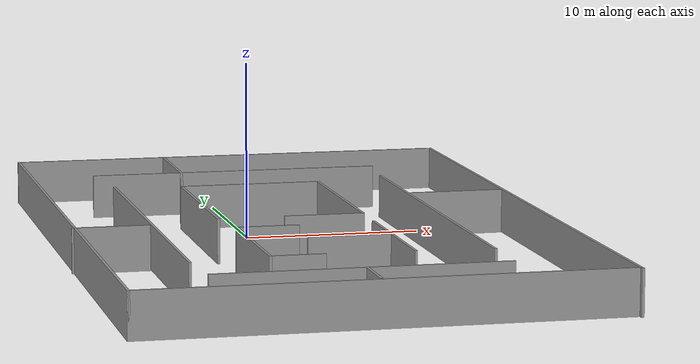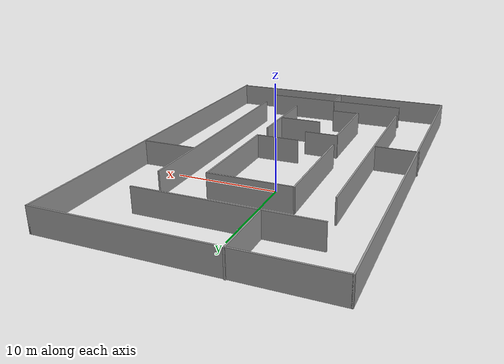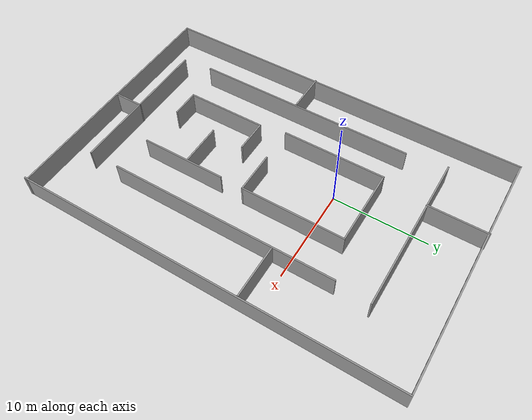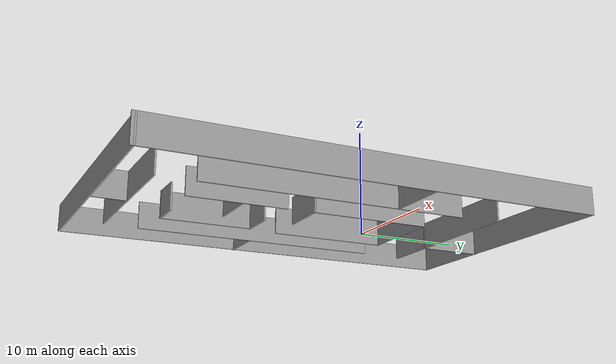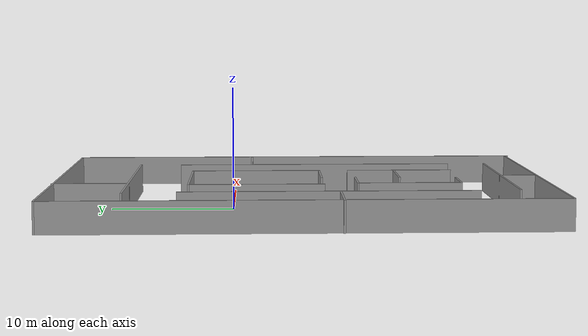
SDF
<?xml version='1.0'?>
<sdf version='1.7'>
  <model name='house02'>
    <pose>1.76621 -5.58674 0 0 -0 0</pose>
    <link name='Wall_0'>
      <collision name='Wall_0_Collision'>
        <geometry>
          <box>
            <size>40 0.15 2.5</size>
          </box>
        </geometry>
        <pose>0 0 1.25 0 -0 0</pose>
      </collision>
      <visual name='Wall_0_Visual'>
        <pose>0 0 1.25 0 -0 0</pose>
        <geometry>
          <box>
            <size>40 0.15 2.5</size>
          </box>
        </geometry>
        <material>
          <script>
            <uri>file://media/materials/scripts/gazebo.material</uri>
            <name>Gazebo/Grey</name>
          </script>
          <ambient>1 1 1 1</ambient>
        </material>
        <meta>
          <layer>0</layer>
        </meta>
      </visual>
      <pose>-12.8717 0.078301 0 0 -0 -1.5708</pose>
    </link>
    <link name='Wall_10'>
      <collision name='Wall_10_Collision'>
        <geometry>
          <box>
            <size>17 0.15 2.5</size>
          </box>
        </geometry>
        <pose>0 0 1.25 0 -0 0</pose>
      </collision>
      <visual name='Wall_10_Visual'>
        <pose>0 0 1.25 0 -0 0</pose>
        <geometry>
          <box>
            <size>17 0.15 2.5</size>
          </box>
        </geometry>
        <material>
          <script>
            <uri>file://media/materials/scripts/gazebo.material</uri>
            <name>Gazebo/Grey</name>
          </script>
          <ambient>1 1 1 1</ambient>
        </material>
        <meta>
          <layer>0</layer>
        </meta>
      </visual>
      <pose>-0.761962 14.0177 0 0 -0 0</pose>
    </link>
    <link name='Wall_18'>
      <collision name='Wall_18_Collision'>
        <geometry>
          <box>
            <size>6.25 0.15 2.5</size>
          </box>
        </geometry>
        <pose>0 0 1.25 0 -0 0</pose>
      </collision>
      <visual name='Wall_18_Visual'>
        <pose>0 0 1.25 0 -0 0</pose>
        <geometry>
          <box>
            <size>6.25 0.15 2.5</size>
          </box>
        </geometry>
        <material>
          <script>
            <uri>file://media/materials/scripts/gazebo.material</uri>
            <name>Gazebo/Grey</name>
          </script>
          <ambient>1 1 1 1</ambient>
        </material>
        <meta>
          <layer>0</layer>
        </meta>
      </visual>
      <pose>-3.97282 17.0467 0 0 -0 1.5708</pose>
    </link>
    <link name='Wall_2'>
      <collision name='Wall_2_Collision'>
        <geometry>
          <box>
            <size>26 0.15 2.5</size>
          </box>
        </geometry>
        <pose>0 0 1.25 0 -0 0</pose>
      </collision>
      <visual name='Wall_2_Visual'>
        <pose>0 0 1.25 0 -0 0</pose>
        <geometry>
          <box>
            <size>26 0.15 2.5</size>
          </box>
        </geometry>
        <material>
          <script>
            <uri>file://media/materials/scripts/gazebo.material</uri>
            <name>Gazebo/Grey</name>
          </script>
          <ambient>1 1 1 1</ambient>
        </material>
        <meta>
          <layer>0</layer>
        </meta>
      </visual>
      <pose>0.053253 20.0033 0 0 -0 0</pose>
    </link>
    <link name='Wall_23'>
      <collision name='Wall_23_Collision'>
        <geometry>
          <box>
            <size>4.25 0.15 2.5</size>
          </box>
        </geometry>
        <pose>0 0 1.25 0 -0 0</pose>
      </collision>
      <visual name='Wall_23_Visual'>
        <pose>0 0 1.25 0 -0 0</pose>
        <geometry>
          <box>
            <size>4.25 0.15 2.5</size>
          </box>
        </geometry>
        <material>
          <script>
            <uri>file://media/materials/scripts/gazebo.material</uri>
            <name>Gazebo/Grey</name>
          </script>
          <ambient>1 1 1 1</ambient>
        </material>
        <meta>
          <layer>0</layer>
        </meta>
      </visual>
      <pose>-10.9283 -2.77645 0 0 -0 0</pose>
    </link>
    <link name='Wall_25'>
      <collision name='Wall_25_Collision'>
        <geometry>
          <box>
            <size>23.5 0.15 2.5</size>
          </box>
        </geometry>
        <pose>0 0 1.25 0 -0 0</pose>
      </collision>
      <visual name='Wall_25_Visual'>
        <pose>0 0 1.25 0 -0 0</pose>
        <geometry>
          <box>
            <size>23.5 0.15 2.5</size>
          </box>
        </geometry>
        <material>
          <script>
            <uri>file://media/materials/scripts/gazebo.material</uri>
            <name>Gazebo/Grey</name>
          </script>
          <ambient>1 1 1 1</ambient>
        </material>
        <meta>
          <layer>0</layer>
        </meta>
      </visual>
      <pose>-8.6713 -1.89976 0 0 -0 -1.5708</pose>
    </link>
    <link name='Wall_28'>
      <collision name='Wall_28_Collision'>
        <geometry>
          <box>
            <size>15.75 0.15 2.5</size>
          </box>
        </geometry>
        <pose>0 0 1.25 0 -0 0</pose>
      </collision>
      <visual name='Wall_28_Visual'>
        <pose>0 0 1.25 0 -0 0</pose>
        <geometry>
          <box>
            <size>15.75 0.15 2.5</size>
          </box>
        </geometry>
        <material>
          <script>
            <uri>file://media/materials/scripts/gazebo.material</uri>
            <name>Gazebo/Grey</name>
          </script>
          <ambient>1 1 1 1</ambient>
        </material>
        <meta>
          <layer>0</layer>
        </meta>
      </visual>
      <pose>-0.502137 -16.8048 0 0 -0 0</pose>
    </link>
    <link name='Wall_3'>
      <collision name='Wall_3_Collision'>
        <geometry>
          <box>
            <size>40.25 0.15 2.5</size>
          </box>
        </geometry>
        <pose>0 0 1.25 0 -0 0</pose>
      </collision>
      <visual name='Wall_3_Visual'>
        <pose>0 0 1.25 0 -0 0</pose>
        <geometry>
          <box>
            <size>40.25 0.15 2.5</size>
          </box>
        </geometry>
        <material>
          <script>
            <uri>file://media/materials/scripts/gazebo.material</uri>
            <name>Gazebo/Grey</name>
          </script>
          <ambient>1 1 1 1</ambient>
        </material>
        <meta>
          <layer>0</layer>
        </meta>
      </visual>
      <pose>12.9783 -0.046699 0 0 -0 -1.5708</pose>
    </link>
    <link name='Wall_30'>
      <collision name='Wall_30_Collision'>
        <geometry>
          <box>
            <size>3 0.15 2.5</size>
          </box>
        </geometry>
        <pose>0 0 1.25 0 -0 0</pose>
      </collision>
      <visual name='Wall_30_Visual'>
        <pose>0 0 1.25 0 -0 0</pose>
        <geometry>
          <box>
            <size>3 0.15 2.5</size>
          </box>
        </geometry>
        <material>
          <script>
            <uri>file://media/materials/scripts/gazebo.material</uri>
            <name>Gazebo/Grey</name>
          </script>
          <ambient>1 1 1 1</ambient>
        </material>
        <meta>
          <layer>0</layer>
        </meta>
      </visual>
      <pose>-0.303513 -18.2298 0 0 -0 -1.5708</pose>
    </link>
    <link name='Wall_32'>
      <collision name='Wall_32_Collision'>
        <geometry>
          <box>
            <size>24 0.15 2.5</size>
          </box>
        </geometry>
        <pose>0 0 1.25 0 -0 0</pose>
      </collision>
      <visual name='Wall_32_Visual'>
        <pose>0 0 1.25 0 -0 0</pose>
        <geometry>
          <box>
            <size>24 0.15 2.5</size>
          </box>
        </geometry>
        <material>
          <script>
            <uri>file://media/materials/scripts/gazebo.material</uri>
            <name>Gazebo/Grey</name>
          </script>
          <ambient>1 1 1 1</ambient>
        </material>
        <meta>
          <layer>0</layer>
        </meta>
      </visual>
      <pose>7.32594 -1.53448 0 0 -0 -1.5708</pose>
    </link>
    <link name='Wall_34'>
      <collision name='Wall_34_Collision'>
        <geometry>
          <box>
            <size>5.5 0.15 2.5</size>
          </box>
        </geometry>
        <pose>0 0 1.25 0 -0 0</pose>
      </collision>
      <visual name='Wall_34_Visual'>
        <pose>0 0 1.25 0 -0 0</pose>
        <geometry>
          <box>
            <size>5.5 0.15 2.5</size>
          </box>
        </geometry>
        <material>
          <script>
            <uri>file://media/materials/scripts/gazebo.material</uri>
            <name>Gazebo/Grey</name>
          </script>
          <ambient>1 1 1 1</ambient>
        </material>
        <meta>
          <layer>0</layer>
        </meta>
      </visual>
      <pose>10.124 4.11467 0 0 -0 0</pose>
    </link>
    <link name='Wall_36'>
      <collision name='Wall_36_Collision'>
        <geometry>
          <box>
            <size>11 0.15 2.5</size>
          </box>
        </geometry>
        <pose>0 0 1.25 0 -0 0</pose>
      </collision>
      <visual name='Wall_36_Visual'>
        <pose>0 0 1.25 0 -0 0</pose>
        <geometry>
          <box>
            <size>11 0.15 2.5</size>
          </box>
        </geometry>
        <material>
          <script>
            <uri>file://media/materials/scripts/gazebo.material</uri>
            <name>Gazebo/Grey</name>
          </script>
          <ambient>1 1 1 1</ambient>
        </material>
        <meta>
          <layer>0</layer>
        </meta>
      </visual>
      <pose>-4.85658 3.73496 0 0 -0 -1.5708</pose>
    </link>
    <link name='Wall_38'>
      <collision name='Wall_38_Collision'>
        <geometry>
          <box>
            <size>8.25 0.15 2.5</size>
          </box>
        </geometry>
        <pose>0 0 1.25 0 -0 0</pose>
      </collision>
      <visual name='Wall_38_Visual'>
        <pose>0 0 1.25 0 -0 0</pose>
        <geometry>
          <box>
            <size>8.25 0.15 2.5</size>
          </box>
        </geometry>
        <material>
          <script>
            <uri>file://media/materials/scripts/gazebo.material</uri>
            <name>Gazebo/Grey</name>
          </script>
          <ambient>1 1 1 1</ambient>
        </material>
        <meta>
          <layer>0</layer>
        </meta>
      </visual>
      <pose>-0.806576 9.15996 0 0 -0 0</pose>
    </link>
    <link name='Wall_41'>
      <collision name='Wall_41_Collision'>
        <geometry>
          <box>
            <size>11 0.15 2.5</size>
          </box>
        </geometry>
        <pose>0 0 1.25 0 -0 0</pose>
      </collision>
      <visual name='Wall_41_Visual'>
        <pose>0 0 1.25 0 -0 0</pose>
        <geometry>
          <box>
            <size>11 0.15 2.5</size>
          </box>
        </geometry>
        <material>
          <script>
            <uri>file://media/materials/scripts/gazebo.material</uri>
            <name>Gazebo/Grey</name>
          </script>
          <ambient>1 1 1 1</ambient>
        </material>
        <meta>
          <layer>0</layer>
        </meta>
      </visual>
      <pose>3.24342 3.73496 0 0 -0 -1.5708</pose>
    </link>
    <link name='Wall_42'>
      <collision name='Wall_42_Collision'>
        <geometry>
          <box>
            <size>4.5 0.15 2.5</size>
          </box>
        </geometry>
        <pose>0 0 1.25 0 -0 0</pose>
      </collision>
      <visual name='Wall_42_Visual'>
        <pose>0 0 1.25 0 -0 0</pose>
        <geometry>
          <box>
            <size>4.5 0.15 2.5</size>
          </box>
        </geometry>
        <material>
          <script>
            <uri>file://media/materials/scripts/gazebo.material</uri>
            <name>Gazebo/Grey</name>
          </script>
          <ambient>1 1 1 1</ambient>
        </material>
        <meta>
          <layer>0</layer>
        </meta>
      </visual>
      <pose>1.06842 -1.69004 0 0 -0 3.14159</pose>
    </link>
    <link name='Wall_44'>
      <collision name='Wall_44_Collision'>
        <geometry>
          <box>
            <size>3.5 0.15 2.5</size>
          </box>
        </geometry>
        <pose>0 0 1.25 0 -0 0</pose>
      </collision>
      <visual name='Wall_44_Visual'>
        <pose>0 0 1.25 0 -0 0</pose>
        <geometry>
          <box>
            <size>3.5 0.15 2.5</size>
          </box>
        </geometry>
        <material>
          <script>
            <uri>file://media/materials/scripts/gazebo.material</uri>
            <name>Gazebo/Grey</name>
          </script>
          <ambient>1 1 1 1</ambient>
        </material>
        <meta>
          <layer>0</layer>
        </meta>
      </visual>
      <pose>-2.71678 -4.48114 0 0 -0 3.14159</pose>
    </link>
    <link name='Wall_45'>
      <collision name='Wall_45_Collision'>
        <geometry>
          <box>
            <size>8.5 0.15 2.5</size>
          </box>
        </geometry>
        <pose>0 0 1.25 0 -0 0</pose>
      </collision>
      <visual name='Wall_45_Visual'>
        <pose>0 0 1.25 0 -0 0</pose>
        <geometry>
          <box>
            <size>8.5 0.15 2.5</size>
          </box>
        </geometry>
        <material>
          <script>
            <uri>file://media/materials/scripts/gazebo.material</uri>
            <name>Gazebo/Grey</name>
          </script>
          <ambient>1 1 1 1</ambient>
        </material>
        <meta>
          <layer>0</layer>
        </meta>
      </visual>
      <pose>-4.39178 -8.65614 0 0 -0 -1.5708</pose>
    </link>
    <link name='Wall_46'>
      <collision name='Wall_46_Collision'>
        <geometry>
          <box>
            <size>3 0.15 2.5</size>
          </box>
        </geometry>
        <pose>0 0 1.25 0 -0 0</pose>
      </collision>
      <visual name='Wall_46_Visual'>
        <pose>0 0 1.25 0 -0 0</pose>
        <geometry>
          <box>
            <size>3 0.15 2.5</size>
          </box>
        </geometry>
        <material>
          <script>
            <uri>file://media/materials/scripts/gazebo.material</uri>
            <name>Gazebo/Grey</name>
          </script>
          <ambient>1 1 1 1</ambient>
        </material>
        <meta>
          <layer>0</layer>
        </meta>
      </visual>
      <pose>-2.96678 -12.8311 0 0 -0 0</pose>
    </link>
    <link name='Wall_48'>
      <collision name='Wall_48_Collision'>
        <geometry>
          <box>
            <size>4.5 0.15 2.5</size>
          </box>
        </geometry>
        <pose>0 0 1.25 0 -0 0</pose>
      </collision>
      <visual name='Wall_48_Visual'>
        <pose>0 0 1.25 0 -0 0</pose>
        <geometry>
          <box>
            <size>4.5 0.15 2.5</size>
          </box>
        </geometry>
        <material>
          <script>
            <uri>file://media/materials/scripts/gazebo.material</uri>
            <name>Gazebo/Grey</name>
          </script>
          <ambient>1 1 1 1</ambient>
        </material>
        <meta>
          <layer>0</layer>
        </meta>
      </visual>
      <pose>0.881258 -8.16131 0 0 -0 0</pose>
    </link>
    <link name='Wall_50'>
      <collision name='Wall_50_Collision'>
        <geometry>
          <box>
            <size>9 0.15 2.5</size>
          </box>
        </geometry>
        <pose>0 0 1.25 0 -0 0</pose>
      </collision>
      <visual name='Wall_50_Visual'>
        <pose>0 0 1.25 0 -0 0</pose>
        <geometry>
          <box>
            <size>9 0.15 2.5</size>
          </box>
        </geometry>
        <material>
          <script>
            <uri>file://media/materials/scripts/gazebo.material</uri>
            <name>Gazebo/Grey</name>
          </script>
          <ambient>1 1 1 1</ambient>
        </material>
        <meta>
          <layer>0</layer>
        </meta>
      </visual>
      <pose>3.20047 -8.62712 0 0 -0 -1.5708</pose>
    </link>
    <link name='Wall_6'>
      <collision name='Wall_6_Collision'>
        <geometry>
          <box>
            <size>26 0.15 2.5</size>
          </box>
        </geometry>
        <pose>0 0 1.25 0 -0 0</pose>
      </collision>
      <visual name='Wall_6_Visual'>
        <pose>0 0 1.25 0 -0 0</pose>
        <geometry>
          <box>
            <size>26 0.15 2.5</size>
          </box>
        </geometry>
        <material>
          <script>
            <uri>file://media/materials/scripts/gazebo.material</uri>
            <name>Gazebo/Grey</name>
          </script>
          <ambient>1 1 1 1</ambient>
        </material>
        <meta>
          <layer>0</layer>
        </meta>
      </visual>
      <pose>0.053253 -19.8467 0 0 -0 0</pose>
    </link>
    <static>1</static>
  </model>
</sdf>
